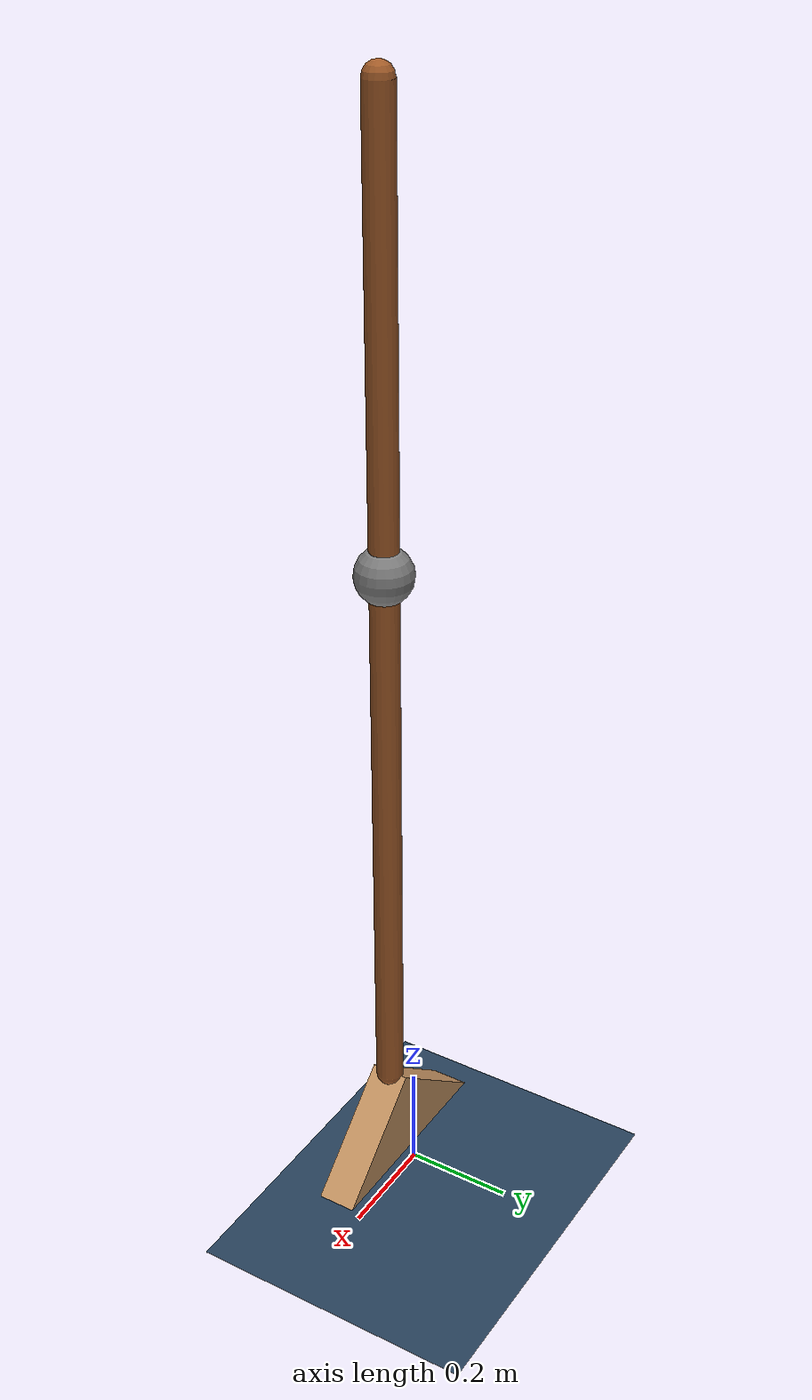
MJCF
<mujoco model="initial_humanoid">

  <option gravity="0 0 -9.81">

    <flag sensornoise="enable" />
  </option>

  <visual>
    <map zfar="30" />

    <rgba haze="0.15 0.25 0.35 1" />

  </visual>

  <statistic center="0 0 0.7" />

  <asset>

    <texture type="skybox" builtin="gradient" rgb1=".3 .5 .7" rgb2="0 0 0" width="32" height="512" />

    <texture name="body" type="cube" builtin="flat" mark="cross" width="128" height="128" rgb1="0.8 0.6 0.4" rgb2="0.8 0.6 0.4" markrgb="1 1 1" random="0.01" />

    <material name="body" texture="body" texuniform="true" rgba="0.8 0.6 .4 1" />

    <texture name="grid" type="2d" builtin="checker" width="512" height="512" rgb1=".1 .2 .3" rgb2=".2 .3 .4" />

    <material name="grid" texture="grid" texrepeat="1 1" texuniform="true" reflectance=".2" />

    <mesh name="foot_mesh" vertex="-0.13528 -0.035 0   -0.13528 0.035 0   0.27056 -0.035 0   0.27056 0.035 0  0.0838736 -0.035 0.178 0.0838736 0.035 0.178" />
  </asset>

  <default>
    <motor ctrlrange="-0.5 0.5" ctrllimited="true" />
    <default class="poo">

      <geom material="body" type="capsule" condim="1" friction="0.99 0.99 0.99" solimp=".9 .99 .003" solref="10 1" group="1" />

      <default class="long_link">
        <geom fromto="0 0 0.1 0 0 0" size="0.025" />
      </default>

    </default>
  </default>

	<worldbody>

      <geom name="ground" size="0 0 .05" friction="0.99 0.99 0.99" type="plane" material="grid" condim="3" solimp=".9 .99 .003" solref="0.015 1" />

      <light name="spotlight" mode="targetbodycom" target="foot" diffuse=".8 .8 .8" specular="0.3 0.3 0.3" pos="0 -6 4" cutoff="30" />

        <body name="foot" pos="0 0 0.1">

          <joint name="rotation_dof" type="hinge" axis="0 -1 0" pos="0.0838736 0 0.035" />
          <joint type="slide" name="joint_slide_x" axis="-1 0 0" pos="0.0838736 0 0.035" />
          <joint type="slide" name="joint_slide_z" axis="0 0 1" pos="0.0838736 0 0.035" />

          <geom type="mesh" mesh="foot_mesh" name="foot_geom" friction=".99 .99 .99" solref="0.015 1" solimp=".9 .99 .003" rgba="0.8 0.6 0.4 1" />

          <body name="long_link_body" pos="0.0838736 0 0.178">

            <joint type="hinge" name="ankle_hinge" axis="0 -1 0" damping="1" pos="0 0 0" />
            <geom name="long_link_geom" class="long_link" mass="0" fromto="0 0 1.78 0 0 0" />
            <geom name="m_body" type="sphere" size="0.05" mass="40.0" pos="0 0 1.0234999999999999" />

          </body>

        </body>

	</worldbody>

  <contact>

    <pair name="foot_ground_friction" geom1="foot_geom" geom2="ground" friction="0.9 0.9 0.99 0.9 0.9" />
  </contact>

	<actuator>
      <motor joint="ankle_hinge" name="ankle_actuator" gear="150" ctrlrange="-0.5 0.5" />
      <motor joint="ankle_hinge" name="exo_ankle_actuator_y" gear="40" />
	</actuator>

	<sensor>
      <jointpos joint="ankle_hinge" />
	</sensor>

</mujoco>
